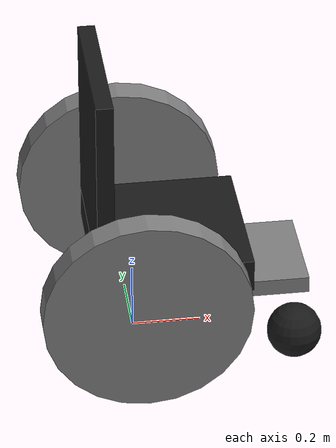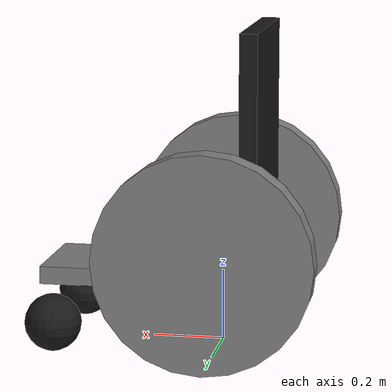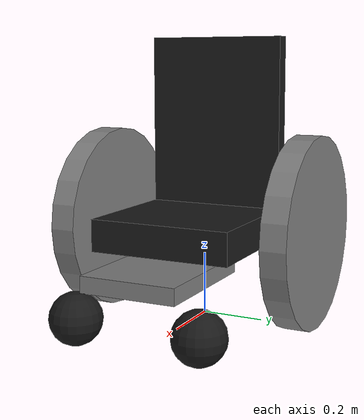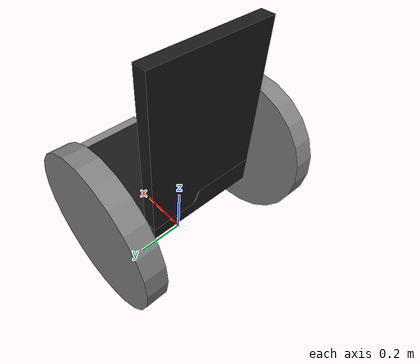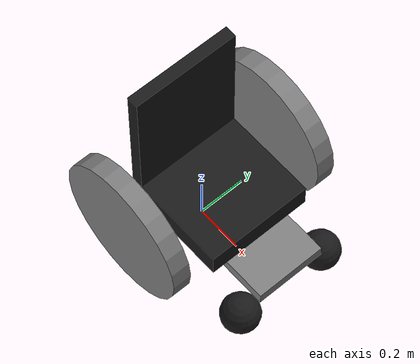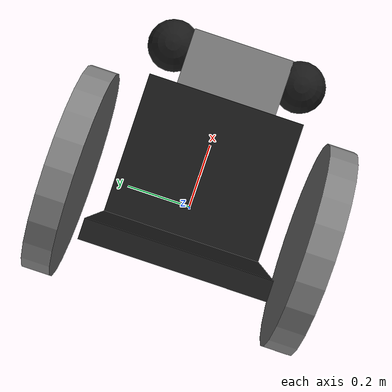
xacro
<?xml version="1.0"?>
<robot xmlns:xacro="http://www.ros.org/wiki/xacro" name="wheelchair_bot">

    <xacro:include filename="inertial_macros.xacro"/>

    <xacro:property name="wheel_radius" value="0.3"/>
    <xacro:property name="wheel_width" value="0.08"/>
    <xacro:property name="wheel_separation" value="0.70"/>

    <xacro:property name="caster_radius" value="0.08"/>
    <xacro:property name="chassis_mass" value="150.0"/>

    <xacro:property name="caster_offset_x" value="0.45"/>

    <material name="white"> <color rgba="1 1 1 1" /> </material>
    <material name="orange"><color rgba="1 0.3 0.1 1"/> </material>
    <material name="blue">  <color rgba="0.2 0.2 1 1"/> </material>
    <material name="black"> <color rgba="0.1 0.1 0.1 1"/> </material>
    <material name="grey">  <color rgba="0.5 0.5 0.5 1"/> </material>

    <link name="base_link"></link>

    <joint name="chassis_joint" type="fixed">
        <parent link="base_link"/>
        <child link="chassis"/>
        <origin xyz="0 0 0"/>
    </joint>

    <link name="chassis">
        <visual>
            <origin xyz="0.1 0 ${wheel_radius}" rpy="0 0 0"/>
            <geometry>
                <box size="0.45 0.45 0.1"/>
            </geometry>
            <material name="black"/>
        </visual>
        <collision>
            <origin xyz="0.1 0 ${wheel_radius}" rpy="0 0 0"/>
            <geometry>
                <box size="0.45 0.45 0.1"/>
            </geometry>
        </collision>

        <visual>
            <origin xyz="-0.1 0 ${wheel_radius + 0.3}" rpy="0 0 0"/>
            <geometry>
                <box size="0.05 0.45 0.6"/>
            </geometry>
            <material name="black"/>
        </visual>
        <collision>
            <origin xyz="-0.1 0 ${wheel_radius + 0.3}" rpy="0 0 0"/>
            <geometry>
                <box size="0.05 0.45 0.6"/>
            </geometry>
        </collision>

        <visual>
            <origin xyz="0.3 0 ${wheel_radius - 0.1}" rpy="0 0 0"/>
            <geometry>
                <box size="0.4 0.3 0.05"/>
            </geometry>
            <material name="grey"/>
        </visual>

        <xacro:inertial_box mass="${chassis_mass}" x="0.5" y="0.5" z="0.6">
            <origin xyz="0.1 0 ${wheel_radius}" rpy="0 0 0"/>
        </xacro:inertial_box>
    </link>

    <gazebo reference="chassis">
        <material>Gazebo/DarkGrey</material>
    </gazebo>

    <joint name="left_wheel_joint" type="continuous">
        <parent link="base_link"/>
        <child link="left_wheel"/>
        <origin xyz="0 ${wheel_separation/2} ${wheel_radius}" rpy="-${pi/2} 0 0" />
        <axis xyz="0 0 1"/>
        <limit effort="100.0" velocity="10.0"/>
        <dynamics damping="0.5" friction="0.1"/>
    </joint>

    <link name="left_wheel">
        <visual>
            <geometry>
                <cylinder radius="${wheel_radius}" length="${wheel_width}"/>
            </geometry>
            <material name="grey"/>
        </visual>
        <collision>
            <geometry>
                <cylinder radius="${wheel_radius}" length="${wheel_width}"/>
            </geometry>
        </collision>
        <xacro:inertial_cylinder mass="2.0" length="${wheel_width}" radius="${wheel_radius}">
            <origin xyz="0 0 0" rpy="0 0 0"/>
        </xacro:inertial_cylinder>
    </link>

    <gazebo reference="left_wheel">
        <material>Gazebo/Grey</material>
        <mu1 value="1.0"/>
        <mu2 value="1.0"/>
    </gazebo>

    <joint name="right_wheel_joint" type="continuous">
        <parent link="base_link"/>
        <child link="right_wheel"/>
        <origin xyz="0 -${wheel_separation/2} ${wheel_radius}" rpy="${pi/2} 0 0" />
        <axis xyz="0 0 -1"/>
        <limit effort="100.0" velocity="10.0"/>
        <dynamics damping="0.5" friction="0.1"/>
    </joint>

    <link name="right_wheel">
        <visual>
            <geometry>
                <cylinder radius="${wheel_radius}" length="${wheel_width}"/>
            </geometry>
            <material name="grey"/>
        </visual>
        <collision>
            <geometry>
                <cylinder radius="${wheel_radius}" length="${wheel_width}"/>
            </geometry>
        </collision>
        <xacro:inertial_cylinder mass="2.0" length="${wheel_width}" radius="${wheel_radius}">
            <origin xyz="0 0 0" rpy="0 0 0"/>
        </xacro:inertial_cylinder>
    </link>

    <gazebo reference="right_wheel">
        <material>Gazebo/Grey</material>
        <mu1 value="1.0"/>
        <mu2 value="1.0"/>
    </gazebo>

    <joint name="fl_caster_joint" type="fixed">
        <parent link="chassis"/>
        <child link="fl_caster"/>
        <origin xyz="${caster_offset_x} 0.2 ${caster_radius}" rpy="0 0 0"/>
    </joint>

    <link name="fl_caster">
        <visual>
            <geometry>
                <sphere radius="${caster_radius}"/>
            </geometry>
            <material name="black"/>
        </visual>
        <collision>
            <geometry>
                <sphere radius="${caster_radius}"/>
            </geometry>
        </collision>
        <xacro:inertial_sphere mass="0.5" radius="${caster_radius}">
            <origin xyz="0 0 0" rpy="0 0 0"/>
        </xacro:inertial_sphere>
    </link>

    <gazebo reference="fl_caster">
        <material>Gazebo/Black</material>
        <mu1 value="0.001"/>
        <mu2 value="0.001"/>
    </gazebo>

    <joint name="fr_caster_joint" type="fixed">
        <parent link="chassis"/>
        <child link="fr_caster"/>
        <origin xyz="${caster_offset_x} -0.2 ${caster_radius}" rpy="0 0 0"/>
    </joint>

    <link name="fr_caster">
        <visual>
            <geometry>
                <sphere radius="${caster_radius}"/>
            </geometry>
            <material name="black"/>
        </visual>
        <collision>
            <geometry>
                <sphere radius="${caster_radius}"/>
            </geometry>
        </collision>
        <xacro:inertial_sphere mass="0.5" radius="${caster_radius}">
            <origin xyz="0 0 0" rpy="0 0 0"/>
        </xacro:inertial_sphere>
    </link>

    <gazebo reference="fr_caster">
        <material>Gazebo/Black</material>
        <mu1 value="0.001"/>
        <mu2 value="0.001"/>
    </gazebo>

</robot>
